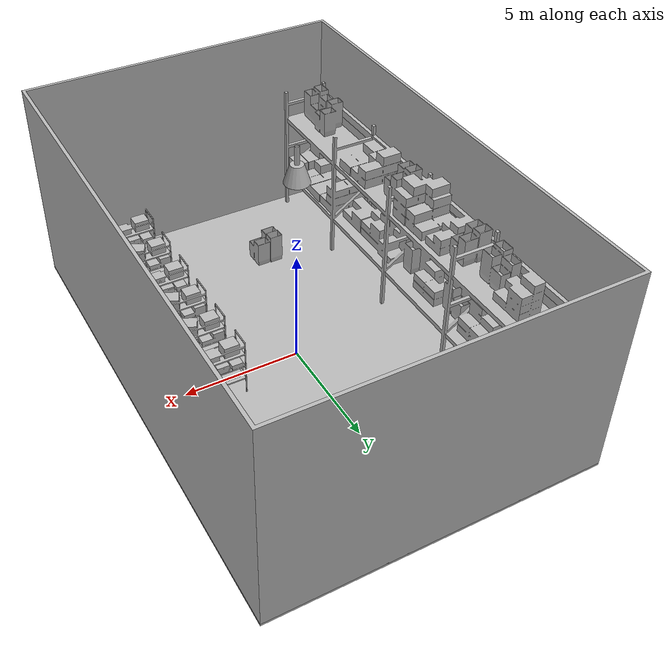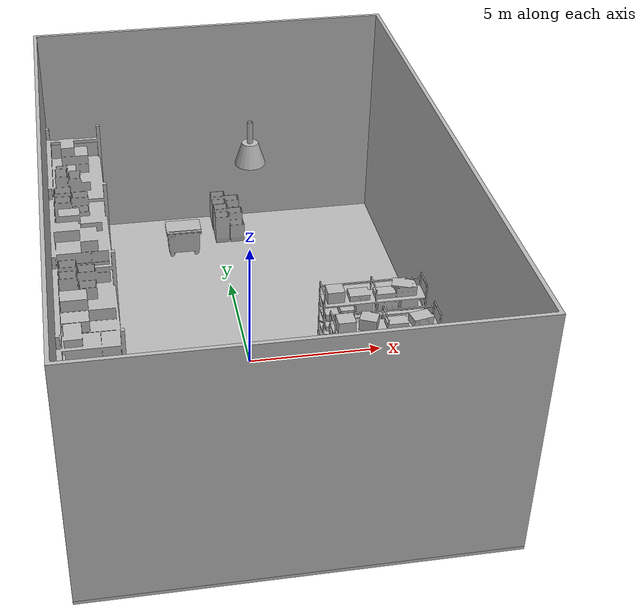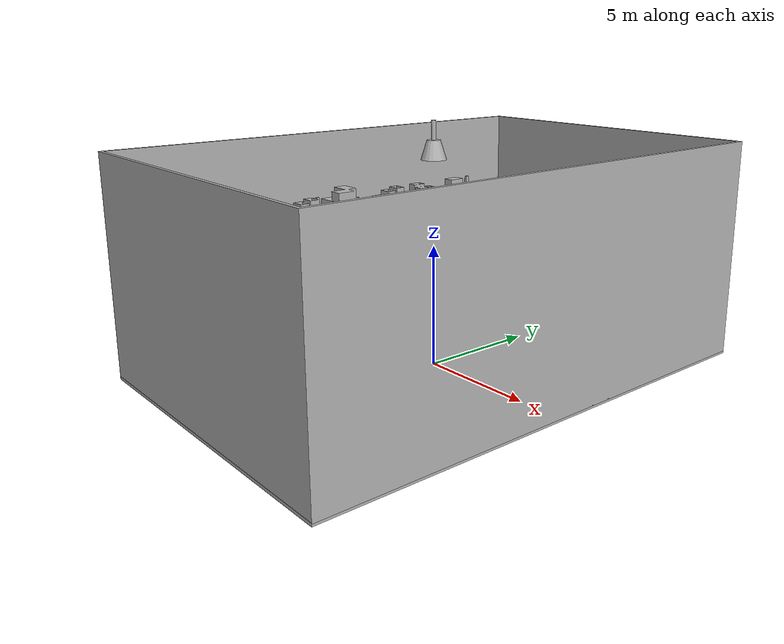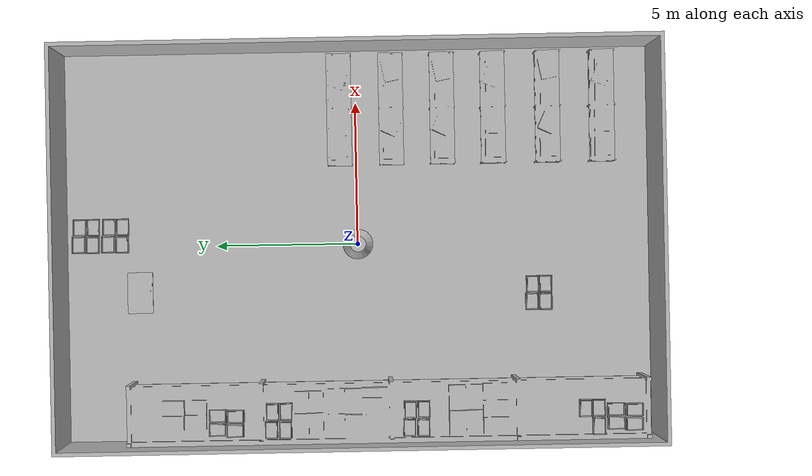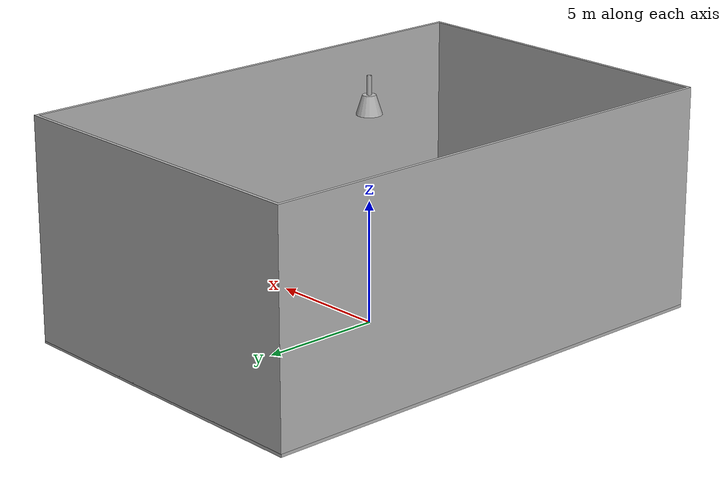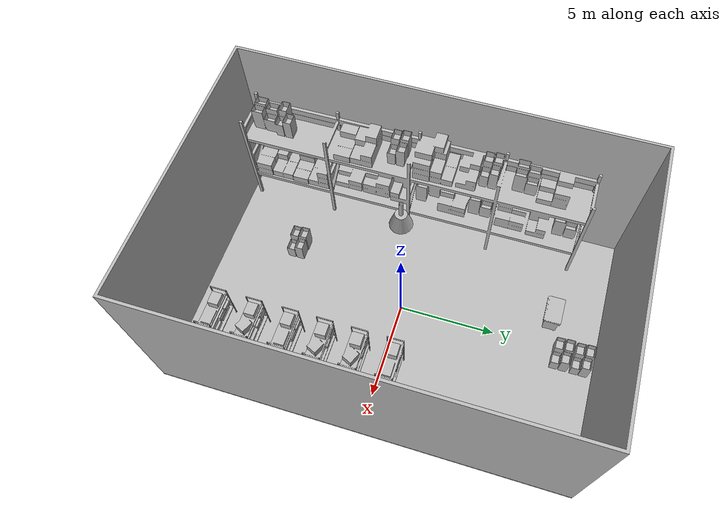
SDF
<sdf version="1.6">
 <world name="default">
  <gravity>0 0 -9.8</gravity>
  <physics default="0" name="default_physics" type="ode">
   <max_step_size>0.001</max_step_size>
   <real_time_factor>1</real_time_factor>
   <real_time_update_rate>1000</real_time_update_rate>
  </physics>
  <model name="aws_robomaker_warehouse_ShelfF_01_001">
   <include><uri>model://aws_robomaker_warehouse_ShelfF_01</uri></include>
   <pose>-5.795143 -0.956635 0 0 0 0</pose>
  </model>
  <model name="aws_robomaker_warehouse_WallB_01_001">
   <include><uri>model://aws_robomaker_warehouse_WallB_01</uri></include>
  </model>
  <model name="aws_robomaker_warehouse_ShelfE_01_001">
   <include><uri>model://aws_robomaker_warehouse_ShelfE_01</uri></include>
   <pose>4.73156 0.57943 0 0 0 0</pose>
  </model>
  <model name="aws_robomaker_warehouse_ShelfE_01_002">
   <include><uri>model://aws_robomaker_warehouse_ShelfE_01</uri></include>
   <pose>4.73156 -4.827049 0 0 0 0</pose>
  </model>
  <model name="aws_robomaker_warehouse_ShelfE_01_003">
   <include><uri>model://aws_robomaker_warehouse_ShelfE_01</uri></include>
   <pose>4.73156 -8.6651 0 0 0 0</pose>
  </model>
  <model name="aws_robomaker_warehouse_ShelfD_01_001">
   <include><uri>model://aws_robomaker_warehouse_ShelfD_01</uri></include>
   <pose>4.73156 -1.242668 0 0 0 0</pose>
  </model>
  <model name="aws_robomaker_warehouse_ShelfD_01_002">
   <include><uri>model://aws_robomaker_warehouse_ShelfD_01</uri></include>
   <pose>4.73156 -3.038551 0 0 0 0</pose>
  </model>
  <model name="aws_robomaker_warehouse_ShelfD_01_003">
   <include><uri>model://aws_robomaker_warehouse_ShelfD_01</uri></include>
   <pose>4.73156 -6.750542 0 0 0 0</pose>
  </model>
  <model name="aws_robomaker_warehouse_GroundB_01_001">
   <include><uri>model://aws_robomaker_warehouse_GroundB_01</uri></include>
   <pose>0.0 0.0 -0.090092 0 0 0</pose>
  </model>
  <model name="aws_robomaker_warehouse_Lamp_01_005">
   <include><uri>model://aws_robomaker_warehouse_Lamp_01</uri></include>
   <pose>0 0 -4 0 0 0</pose>
  </model>
  <model name="aws_robomaker_warehouse_Bucket_01_020">
   <include><uri>model://aws_robomaker_warehouse_Bucket_01</uri></include>
   <pose>0.433449 9.631706 0 0 0 -1.563161</pose>
  </model>
  <model name="aws_robomaker_warehouse_Bucket_01_021">
   <include><uri>model://aws_robomaker_warehouse_Bucket_01</uri></include>
   <pose>-1.8321 -6.3752 0 0 0 -1.563161</pose>
  </model>
  <model name="aws_robomaker_warehouse_Bucket_01_022">
   <include><uri>model://aws_robomaker_warehouse_Bucket_01</uri></include>
   <pose>0.433449 8.59 0 0 0 -1.563161</pose>
  </model>
  <model name="aws_robomaker_warehouse_TrashCanC_01_002">
   <include><uri>model://aws_robomaker_warehouse_TrashCanC_01</uri></include>
   <pose>-1.592441 7.715420 0 0 0 0</pose>
  </model>
  <light name="Warehouse_CeilingLight_003" type="point">
   <pose>0 0 9 0 0 0</pose>
   <diffuse>0.5 0.5 0.5 1</diffuse>
   <specular>0.2 0.2 0.2 1</specular>
   <attenuation>
    <range>80</range>
    <constant>0.3</constant>
    <linear>0.01</linear>
    <quadratic>0.001</quadratic>
   </attenuation>
   <direction>0.1 0.1 -1</direction>
  </light>
 </world>
</sdf>

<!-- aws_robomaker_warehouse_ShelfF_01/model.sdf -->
<sdf version="1.6">
  <model name="aws_robomaker_warehouse_ShelfF_01">
    <link name="link">
      <inertial>
        <mass>30</mass>
        <inertia>
          <ixx>907.144</ixx>
          <ixy>0</ixy>
          <ixz>0</ixz>
          <iyy>104.950</iyy>
          <iyz>0</iyz>
          <izz>824.248</izz>
        </inertia>
      </inertial>
      <collision name="collision">
        <geometry>
          <mesh>
            <uri>model://aws_robomaker_warehouse_ShelfF_01/meshes/aws_robomaker_warehouse_ShelfF_01_collision.DAE</uri>
            <scale>1 1 1</scale>
          </mesh>
        </geometry>
		<surface>
          <friction>
            <ode>
              <mu>0.2</mu>
              <mu2>0.2</mu2>
              <fdir1>0 0 0</fdir1>
              <slip1>0</slip1>
              <slip2>0</slip2>
            </ode>
        </friction>
          </surface>
      </collision>
      <visual name="visual">
	    <geometry>
          <mesh>
            <uri>model://aws_robomaker_warehouse_ShelfF_01/meshes/aws_robomaker_warehouse_ShelfF_01_visual.DAE</uri>
          </mesh>
        </geometry>
      <meta> <layer> 1 </layer></meta>
</visual>
    </link>
<static>1</static>
  </model>
</sdf>

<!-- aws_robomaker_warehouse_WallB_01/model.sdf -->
<sdf version="1.6">
  <model name="aws_robomaker_warehouse_WallB_01">
    <link name="link">
      <inertial>
        <mass>1000</mass>
        <inertia>
          <ixx>840083.33</ixx>
          <ixy>0</ixy>
          <ixz>0</ixz>
          <iyy>475500.0</iyy>
          <iyz>0</iyz>
          <izz>1302083.33</izz>
        </inertia>
      </inertial>
      <collision name="collision">
        <geometry>
          <mesh>
            <uri>model://aws_robomaker_warehouse_WallB_01/meshes/aws_robomaker_warehouse_WallB_01_collision.DAE</uri>
            <scale>1 1 1</scale>
          </mesh>
        </geometry>
		<surface>
          <friction>
            <ode>
              <mu>0.5</mu>
              <mu2>0.5</mu2>
              <fdir1>0 0 0</fdir1>
              <slip1>0</slip1>
              <slip2>0</slip2>
            </ode>
        </friction>
          </surface>
      </collision>
      <visual name="visual">
	    <geometry>
          <mesh>
            <uri>model://aws_robomaker_warehouse_WallB_01/meshes/aws_robomaker_warehouse_WallB_01_visual.DAE</uri>
          </mesh>
        </geometry>
      <meta> <layer> 2 </layer></meta>
</visual>
    </link>
<static>1</static>
  </model>
</sdf>

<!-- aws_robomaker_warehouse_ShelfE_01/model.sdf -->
<sdf version="1.6">
  <model name="aws_robomaker_warehouse_ShelfE_01">
    <link name="link_shelfe01">
      <inertial>
        <mass>30</mass>
        <inertia>
          <ixx>907.144</ixx>
          <ixy>0</ixy>
          <ixz>0</ixz>
          <iyy>104.950</iyy>
          <iyz>0</iyz>
          <izz>824.248</izz>
        </inertia>
      </inertial>
      <collision name="collision">
        <geometry>
          <mesh>
            <uri>model://aws_robomaker_warehouse_ShelfE_01/meshes/aws_robomaker_warehouse_ShelfE_01_collision.DAE</uri>
            <scale>1 1 1</scale>
          </mesh>
        </geometry>
		<surface>
          <friction>
            <ode>
              <mu>0.2</mu>
              <mu2>0.2</mu2>
              <fdir1>0 0 0</fdir1>
              <slip1>0</slip1>
              <slip2>0</slip2>
            </ode>
        </friction>
          </surface>
      </collision>
      <visual name="visual">
	    <geometry>
          <mesh>
            <uri>model://aws_robomaker_warehouse_ShelfE_01/meshes/aws_robomaker_warehouse_ShelfE_01_visual.DAE</uri>
          </mesh>
        </geometry>
      <meta> <layer> 1 </layer></meta>
</visual>
    </link>
<static>1</static>
  </model>
</sdf>

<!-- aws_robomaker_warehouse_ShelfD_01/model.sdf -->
<sdf version="1.6">
  <model name="aws_robomaker_warehouse_ShelfD_01">
    <link name="link_shelfd_01">
      <inertial>
        <mass>30</mass>
        <inertia>
          <ixx>907.144</ixx>
          <ixy>0</ixy>
          <ixz>0</ixz>
          <iyy>104.950</iyy>
          <iyz>0</iyz>
          <izz>824.248</izz>
        </inertia>
      </inertial>
      <collision name="collision">
        <geometry>
          <mesh>
            <uri>model://aws_robomaker_warehouse_ShelfD_01/meshes/aws_robomaker_warehouse_ShelfD_01_collision.DAE</uri>
            <scale>1 1 1</scale>
          </mesh>
        </geometry>
		<surface>
          <friction>
            <ode>
              <mu>0.2</mu>
              <mu2>0.2</mu2>
              <fdir1>0 0 0</fdir1>
              <slip1>0</slip1>
              <slip2>0</slip2>
            </ode>
        </friction>
          </surface>
      </collision>
      <visual name="visual">
	    <geometry>
          <mesh>
            <uri>model://aws_robomaker_warehouse_ShelfD_01/meshes/aws_robomaker_warehouse_ShelfD_01_visual.DAE</uri>
          </mesh>
        </geometry>
      <meta> <layer> 1 </layer></meta>
</visual>
    </link>
<static>1</static>
  </model>
</sdf>

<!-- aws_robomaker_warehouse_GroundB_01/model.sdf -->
<sdf version="1.6">
  <model name="aws_robomaker_warehouse_GroundB_01">
    <link name="link">
      <inertial>
        <mass>1000</mass>
      </inertial>
      <collision name="collision">
        <geometry>
          <mesh>
            <uri>model://aws_robomaker_warehouse_GroundB_01/meshes/aws_robomaker_warehouse_GroundB_01_collision.DAE</uri>
            <scale>1 1 1</scale>
          </mesh>
        </geometry>
        <surface>
          <friction>
            <ode>
              <mu>100</mu>
              <mu2>50</mu2>
              <fdir1>0 0 0</fdir1>
              <slip1>0</slip1>
              <slip2>0</slip2>
            </ode>
          </friction>
        </surface>
      </collision>
      <visual name="visual">
	    <geometry>
          <mesh>
            <uri>model://aws_robomaker_warehouse_GroundB_01/meshes/aws_robomaker_warehouse_GroundB_01_visual.DAE</uri>
          </mesh>
        </geometry>
      <meta> <layer> 1 </layer></meta>
</visual>
    </link>
<static>1</static>
  </model>
</sdf>

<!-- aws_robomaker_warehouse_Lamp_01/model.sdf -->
<sdf version="1.6">
  <model name="aws_robomaker_warehouse_Lamp_01">
    <link name="link">
      <inertial>
        <mass>30</mass>
        <inertia>
          <ixx>907.144</ixx>
          <ixy>0</ixy>
          <ixz>0</ixz>
          <iyy>104.950</iyy>
          <iyz>0</iyz>
          <izz>824.248</izz>
        </inertia>
      </inertial>
      <collision name="collision">
        <geometry>
          <mesh>
            <uri>model://aws_robomaker_warehouse_Lamp_01/meshes/aws_robomaker_warehouse_Lamp_01_collision.DAE</uri>
            <scale>1 1 1</scale>
          </mesh>
        </geometry>
		<surface>
          <friction>
            <ode>
              <mu>0.2</mu>
              <mu2>0.2</mu2>
              <fdir1>0 0 0</fdir1>
              <slip1>0</slip1>
              <slip2>0</slip2>
            </ode>
        </friction>
          </surface>
      </collision>
      <visual name="visual">
	    <geometry>
          <mesh>
            <uri>model://aws_robomaker_warehouse_Lamp_01/meshes/aws_robomaker_warehouse_Lamp_01_visual.DAE</uri>
          </mesh>
        </geometry>
      <meta> <layer> 1 </layer></meta>
</visual>
    </link>
<static>1</static>
  </model>
</sdf>

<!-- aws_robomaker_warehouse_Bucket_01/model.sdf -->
<sdf version='1.6'>
  <model name='aws_robomaker_warehouse_Bucket_01'>
    <link name='body'>
	  <inertial>
        <mass>2</mass>
        <pose frame=''>0 0 0 0 0 0</pose>
        <inertia>
          <ixx>0.570</ixx>
          <ixy>0</ixy>
          <ixz>0</ixz>
          <iyy>0.474</iyy>
          <iyz>0</iyz>
          <izz>0.391</izz>
        </inertia>
      </inertial>
      <pose frame=''>0 0 0 0 -0 0</pose>
      <self_collide>0</self_collide>
      <kinematic>0</kinematic>
      <gravity>1</gravity>
      <visual name='visual'>
        <geometry>
          <mesh>
            <uri>model://models/aws_robomaker_warehouse_Bucket_01/meshes/aws_robomaker_warehouse_Bucket_01_visual.DAE</uri>
          </mesh>
        </geometry>
		<meta> <layer> 1 </layer></meta>
      </visual>
      <collision name='collision_0'>
        <laser_retro>0</laser_retro>
        <max_contacts>10</max_contacts>
        <pose frame=''>0 0 0 0 -0 0</pose>
        <geometry>
          <mesh>
            <uri>model://models/aws_robomaker_warehouse_Bucket_01/meshes/aws_robomaker_warehouse_Bucket_01_collision.DAE</uri>
            <scale>1 1 1</scale>
          </mesh>
        </geometry>
		<surface>
          <friction>
            <ode>
              <mu>0.4</mu>
              <mu2>0.4</mu2>
              <fdir1>0 0 0</fdir1>
              <slip1>0</slip1>
              <slip2>0</slip2>
            </ode>
            <torsional>
              <coefficient>1</coefficient>
              <patch_radius>0</patch_radius>
              <surface_radius>0</surface_radius>
              <use_patch_radius>1</use_patch_radius>
              <ode>
                <slip>0</slip>
              </ode>
            </torsional>
          </friction>
        </surface>
      </collision>
    </link>
    <static>true</static>
  </model>
</sdf>

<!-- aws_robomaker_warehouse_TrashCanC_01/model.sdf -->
<sdf version="1.6">
  <model name="aws_robomaker_warehouse_TrashCanC_01">
    <link name="link">
      <inertial>
        <mass>1</mass>
        <inertia>
          <ixx>0.200</ixx>
          <ixy>0</ixy>
          <ixz>0</ixz>
          <iyy>0.308</iyy>
          <iyz>0</iyz>
          <izz>0.240</izz>
        </inertia>
      </inertial>
      <collision name="collision">
        <geometry>
          <mesh>
            <uri>model://aws_robomaker_warehouse_TrashCanC_01/meshes/aws_robomaker_warehouse_TrashCanC_01_collision.DAE</uri>
            <scale>1 1 1</scale>
          </mesh>
        </geometry>
		<surface>
          <friction>
            <ode>
              <mu>0.4</mu>
              <mu2>0.4</mu2>
              <fdir1>0 0 0</fdir1>
              <slip1>0</slip1>
              <slip2>0</slip2>
            </ode>
        </friction>
          </surface>
      </collision>
      <visual name="visual">
	    <geometry>
          <mesh>
            <uri>model://aws_robomaker_warehouse_TrashCanC_01/meshes/aws_robomaker_warehouse_TrashCanC_01_visual.DAE</uri>
          </mesh>
        </geometry>
      <meta> <layer> 1 </layer></meta>
</visual>
    </link>
<static>1</static>
  </model>
</sdf>
